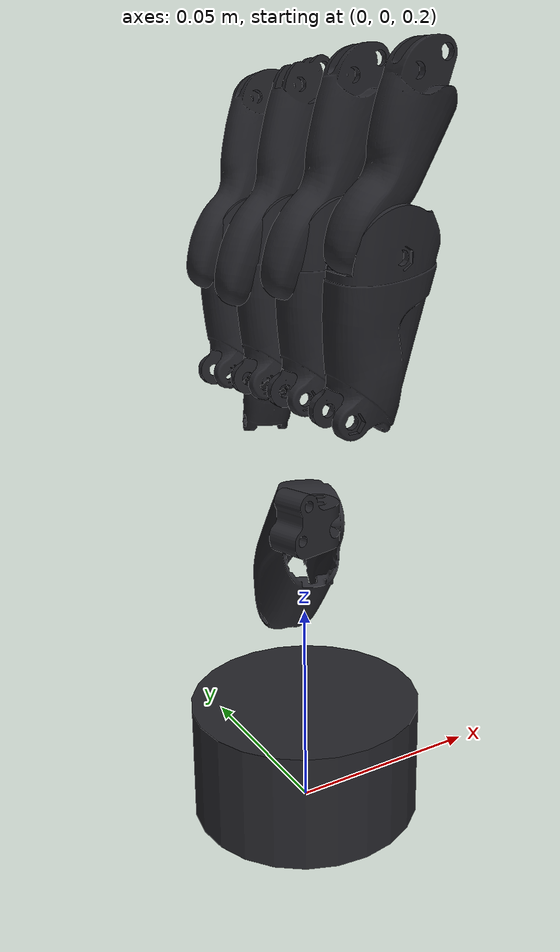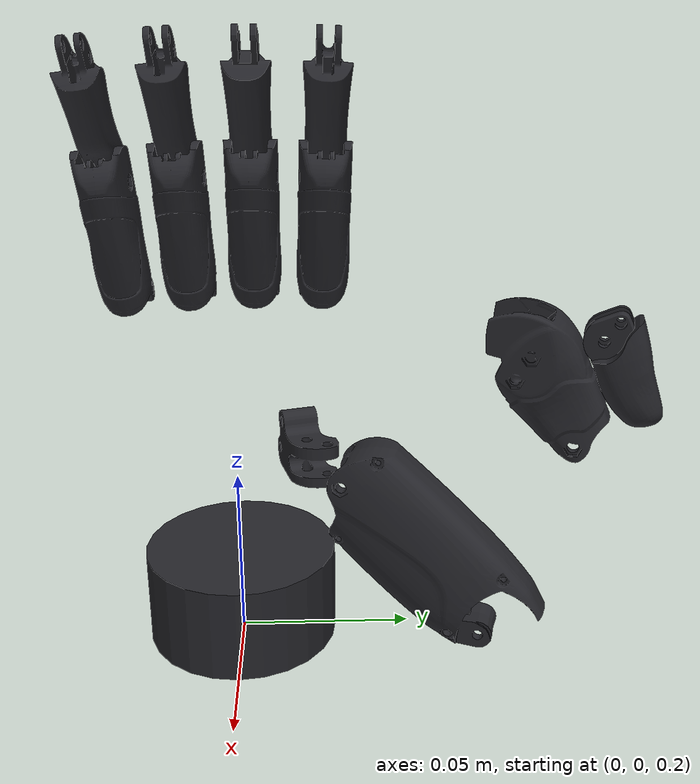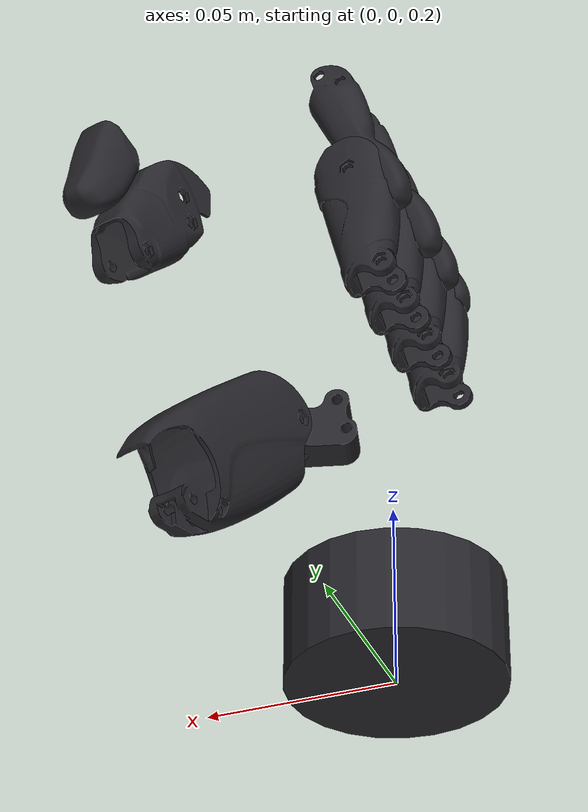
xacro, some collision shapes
<?xml version="1.0"?>
<robot xmlns:xacro="http://www.ros.org/wiki/xacro" name="inspire_hand">

  <xacro:arg name="side" default="right"/>
  <xacro:arg name="prefix" default=""/>

  <xacro:arg name="mount_to_world" default="true"/>

  <xacro:arg name="ros2_control" default="false"/>
  <xacro:arg name="hardware_type" default="mock"/>
  <xacro:arg name="mujoco_model" default=""/>
  <xacro:arg name="pids_config_file" default=""/>
  <xacro:arg name="headless" default="true"/>

  <xacro:include filename="$(find inspire_hand_description)/urdf/inspire_hand.macro.xacro"/>
  <xacro:include
    filename="$(find inspire_hand_description)/ros2_control/inspire_hand.ros2_control.xacro"/>

  <xacro:if value="$(arg mount_to_world)">
    <link name="world"/>
  </xacro:if>

  <xacro:inspire_hand
    side="$(arg side)"
    prefix="$(arg prefix)"
    parent="${'world' if '$(arg mount_to_world)' == 'true' else ''}"
    xyz="0 0 0.2"
    rpy="0 0 0"/>

  <xacro:if value="$(arg ros2_control)">
    <xacro:inspire_hand_ros2_control
      name="InspireHandSystem"
      prefix="$(arg prefix)"
      hardware_type="$(arg hardware_type)"
      mujoco_model="$(arg mujoco_model)"
      pids_config_file="$(arg pids_config_file)"
      headless="$(arg headless)"/>
  </xacro:if>

</robot>

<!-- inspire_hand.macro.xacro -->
<robot xmlns:xacro="http://www.ros.org/wiki/xacro">

  <xacro:include filename="$(find inspire_hand_description)/urdf/inspire_hand_right.macro.xacro"/>
  <xacro:include filename="$(find inspire_hand_description)/urdf/inspire_hand_left.macro.xacro"/>

  <xacro:macro name="inspire_hand"
    params="side:='right' prefix:='' parent:='' xyz:='0 0 0' rpy:='0 0 0'">

    <xacro:if value="${side == 'right'}">
      <xacro:inspire_hand_right prefix="${prefix}" parent="${parent}" xyz="${xyz}" rpy="${rpy}"/>
    </xacro:if>
    <xacro:if value="${side == 'left'}">
      <xacro:inspire_hand_left prefix="${prefix}" parent="${parent}" xyz="${xyz}" rpy="${rpy}"/>
    </xacro:if>
    <!-- Fails the expansion rather than silently producing a hand-less
         description. See inspire_franka_description's copy of this idiom for
         why it is a KeyError and not xacro.error(). -->
    <xacro:unless value="${side in ('left', 'right')}">
      <link name="${dict()['inspire_hand: side must be left or right.']}"/>
    </xacro:unless>

  </xacro:macro>
</robot>

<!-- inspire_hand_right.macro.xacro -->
<robot xmlns:xacro="http://www.ros.org/wiki/xacro">

  <xacro:macro name="inspire_hand_right"
    params="prefix:='' parent:='' xyz:='0 0 0' rpy:='0 0 0'">

    <!-- Mount. With no parent the hand stands alone and hand_mount is the
         description's root link; with one, it is welded to that link. -->
    <xacro:unless value="${parent == ''}">
      <joint name="${prefix}hand_mount_joint" type="fixed">
        <origin xyz="${xyz}" rpy="${rpy}"/>
        <parent link="${parent}"/>
        <child link="${prefix}hand_mount"/>
      </joint>
    </xacro:unless>

    <link name="${prefix}hand_mount" />

    <link name="${prefix}hand_base_link">
      <inertial>
        <origin xyz="-0.0025264 -0.066047 0.0019598" rpy="0 0 0" />
        <mass value="0.14143" />
        <inertia ixx="0.00012281" ixy="2.1711E-06" ixz="1.7709E-06" iyy="8.3832E-05" iyz="-1.6551E-06" izz="7.6663E-05" />
      </inertial>
      <visual>
        <origin xyz="0 0 0" rpy="0 0 0" />
        <geometry>
          <mesh filename="package://inspire_hand_description/meshes/right/visual/base_link.stl" />
        </geometry>
        <material name="${prefix}inspire_hand_shell">
          <color rgba="0.15 0.15 0.17 1.0" />
        </material>
      </visual>
      <collision>
        <origin xyz="0 -0.0136 0" rpy="1.57079 0 0" />
        <geometry>
          <cylinder length="0.0278" radius="0.028" />
        </geometry>
      </collision>
      <collision>
        <origin xyz="-0.0032 -0.038 0" rpy="0 0 0" />
        <geometry>
          <box size="0.0391 0.0202 0.0574" />
        </geometry>
      </collision>
      <collision>
        <origin xyz="-0.0032 -0.0682 0" rpy="0 0 0" />
        <geometry>
          <box size="0.0391 0.04 0.0814" />
        </geometry>
      </collision>
      <collision>
        <origin xyz="0 -0.1081 0" rpy="0 0 0" />
        <geometry>
          <box size="0.0322 0.04 0.0814" />
        </geometry>
      </collision>
      <collision>
        <origin xyz="-0.0016 -0.1340 0.0309" rpy="0 0 0" />
        <geometry>
          <box size="0.0125 0.0111 0.0089" />
        </geometry>
      </collision>
      <collision>
        <origin xyz="-0.0016 -0.1340 0.0118" rpy="0 0 0" />
        <geometry>
          <box size="0.0125 0.0111 0.0089" />
        </geometry>
      </collision>
      <collision>
        <origin xyz="-0.0016 -0.1340 -0.0070" rpy="0 0 0" />
        <geometry>
          <box size="0.0125 0.0111 0.0089" />
        </geometry>
      </collision>
      <collision>
        <origin xyz="-0.0016 -0.1340 -0.0262" rpy="0 0 0" />
        <geometry>
          <box size="0.0125 0.0111 0.0089" />
        </geometry>
      </collision>
    </link>

    <link name="${prefix}thumb_proximal_base">
      <inertial>
        <origin xyz="-0.0048064 0.0009382 -0.00757" rpy="0 0 0" />
        <mass value="0.0018869" />
        <inertia ixx="5.816E-08" ixy="1.4539E-08" ixz="4.491E-09" iyy="7.9161E-08" iyz="-1.8727E-09" izz="6.7433E-08" />
      </inertial>
      <visual>
        <origin xyz="0 0 0" rpy="0 0 0" />
        <geometry>
          <mesh filename="package://inspire_hand_description/meshes/right/visual/thumb_proximal_base.stl" />
        </geometry>
        <material name="${prefix}inspire_hand_shell">
          <color rgba="0.15 0.15 0.17 1.0" />
        </material>
      </visual>
      <collision>
        <origin xyz="0 0 0" rpy="0 0 0" />
        <geometry>
          <mesh filename="package://inspire_hand_description/meshes/right/collision/thumb_proximal_base.obj" />
        </geometry>
      </collision>
    </link>

    <link name="${prefix}thumb_proximal">
      <inertial>
        <origin xyz="0.021932 0.012785 -0.0080386" rpy="0 0 0" />
        <mass value="0.0066075" />
        <inertia ixx="1.5686E-06" ixy="-7.8296E-07" ixz="8.9143E-10" iyy="1.7353E-06" iyz="-1.0191E-09" izz="2.786E-06" />
      </inertial>
      <visual>
        <origin xyz="0 0 0" rpy="0 0 0" />
        <geometry>
          <mesh filename="package://inspire_hand_description/meshes/right/visual/thumb_proximal.stl" />
        </geometry>
        <material name="${prefix}inspire_hand_shell">
          <color rgba="0.15 0.15 0.17 1.0" />
        </material>
      </visual>
      <collision>
        <origin xyz="0 0 0" rpy="0 0 0" />
        <geometry>
          <mesh filename="package://inspire_hand_description/meshes/right/collision/thumb_proximal.obj" />
        </geometry>
      </collision>
    </link>

    <link name="${prefix}thumb_intermediate">
      <inertial>
        <origin xyz="0.0095544 -0.0016282 -0.0071997" rpy="0 0 0" />
        <mass value="0.0037847" />
        <inertia ixx="3.6981E-07" ixy="-9.8581E-08" ixz="-4.7469E-12" iyy="3.2394E-07" iyz="1.0939E-12" izz="4.6531E-07" />
      </inertial>
      <visual>
        <origin xyz="0 0 0" rpy="0 0 0" />
        <geometry>
          <mesh filename="package://inspire_hand_description/meshes/right/visual/thumb_intermediate.stl" />
        </geometry>
        <material name="${prefix}inspire_hand_shell">
          <color rgba="0.15 0.15 0.17 1.0" />
        </material>
      </visual>
      <collision>
        <origin xyz="0 0 0" rpy="0 0 0" />
        <geometry>
          <mesh filename="package://inspire_hand_description/meshes/right/collision/thumb_intermediate.obj" />
        </geometry>
      </collision>
    </link>

    <link name="${prefix}thumb_distal">
      <inertial>
        <origin xyz="0.0092888 0.0049529 -0.0060033" rpy="0 0 0" />
        <mass value="0.0033441" />
        <inertia ixx="1.3632E-07" ixy="-5.6788E-08" ixz="-9.2764E-11" iyy="1.4052E-07" iyz="-1.2283E-10" izz="2.0026E-07" />
      </inertial>
      <visual>
        <origin xyz="0 0 0" rpy="0 0 0" />
        <geometry>
          <mesh filename="package://inspire_hand_description/meshes/right/visual/thumb_distal.stl" />
        </geometry>
        <material name="${prefix}inspire_hand_shell">
          <color rgba="0.15 0.15 0.17 1.0" />
        </material>
      </visual>
      <collision>
        <origin xyz="0 0 0" rpy="0 0 0" />
        <geometry>
          <mesh filename="package://inspire_hand_description/meshes/right/collision/thumb_distal.obj" />
        </geometry>
      </collision>
    </link>

    <link name="${prefix}index_proximal">
      <inertial>
        <origin xyz="0.0012259 0.011942 -0.0060001" rpy="0 0 0" />
        <mass value="0.0042403" />
        <inertia ixx="6.6232E-07" ixy="-1.5775E-08" ixz="1.8515E-12" iyy="2.1146E-07" iyz="-5.0828E-12" izz="6.9398E-07" />
      </inertial>
      <visual>
        <origin xyz="0 0 0" rpy="0 0 0" />
        <geometry>
          <mesh filename="package://inspire_hand_description/meshes/right/visual/index_proximal.stl" />
        </geometry>
        <material name="${prefix}inspire_hand_shell">
          <color rgba="0.15 0.15 0.17 1.0" />
        </material>
      </visual>
      <collision>
        <origin xyz="0 0 0" rpy="0 0 0" />
        <geometry>
          <mesh filename="package://inspire_hand_description/meshes/right/collision/index_proximal.obj" />
        </geometry>
      </collision>
    </link>

    <link name="${prefix}index_intermediate">
      <inertial>
        <origin xyz="0.0019697 0.019589 -0.005" rpy="0 0 0" />
        <mass value="0.0045683" />
        <inertia ixx="7.6111E-07" ixy="8.7637E-08" ixz="-3.7751E-13" iyy="9.6076E-08" iyz="9.9444E-13" izz="7.8179E-07" />
      </inertial>
      <visual>
        <origin xyz="0 0 0" rpy="0 0 0" />
        <geometry>
          <mesh filename="package://inspire_hand_description/meshes/right/visual/index_intermediate.stl" />
        </geometry>
        <material name="${prefix}inspire_hand_shell">
          <color rgba="0.15 0.15 0.17 1.0" />
        </material>
      </visual>
      <collision>
        <origin xyz="0 0 0" rpy="0 0 0" />
        <geometry>
          <mesh filename="package://inspire_hand_description/meshes/right/collision/index_intermediate.obj" />
        </geometry>
      </collision>
    </link>

    <link name="${prefix}middle_proximal">
      <inertial>
        <origin xyz="0.001297 0.011934 -0.0060001" rpy="0 0 0" />
        <mass value="0.0042403" />
        <inertia ixx="6.6211E-07" ixy="-1.8461E-08" ixz="1.8002E-12" iyy="2.1167E-07" iyz="-6.6808E-12" izz="6.9397E-07" />
      </inertial>
      <visual>
        <origin xyz="0 0 0" rpy="0 0 0" />
        <geometry>
          <mesh filename="package://inspire_hand_description/meshes/right/visual/index_proximal.stl" />
        </geometry>
        <material name="${prefix}inspire_hand_shell">
          <color rgba="0.15 0.15 0.17 1.0" />
        </material>
      </visual>
      <collision>
        <origin xyz="0 0 0" rpy="0 0 0" />
        <geometry>
          <mesh filename="package://inspire_hand_description/meshes/right/collision/index_proximal.obj" />
        </geometry>
      </collision>
    </link>

    <link name="${prefix}middle_intermediate">
      <inertial>
        <origin xyz="0.001921 0.020796 -0.005" rpy="0 0 0" />
        <mass value="0.0050396" />
        <inertia ixx="9.5822E-07" ixy="1.1425E-07" ixz="-2.4791E-12" iyy="1.0646E-07" iyz="5.9173E-12" izz="9.8384E-07" />
      </inertial>
      <visual>
        <origin xyz="0 0 0" rpy="0 0 0" />
        <geometry>
          <mesh filename="package://inspire_hand_description/meshes/right/visual/middle_intermediate.stl" />
        </geometry>
        <material name="${prefix}inspire_hand_shell">
          <color rgba="0.15 0.15 0.17 1.0" />
        </material>
      </visual>
      <collision>
        <origin xyz="0 0 0" rpy="0 0 0" />
        <geometry>
          <mesh filename="package://inspire_hand_description/meshes/right/collision/middle_intermediate.obj" />
        </geometry>
      </collision>
    </link>

    <link name="${prefix}ring_proximal">
      <inertial>
        <origin xyz="0.001297 0.011934 -0.0060002" rpy="0 0 0" />
        <mass value="0.0042403" />
        <inertia ixx="6.6211E-07" ixy="-1.8461E-08" ixz="1.5793E-12" iyy="2.1167E-07" iyz="-6.6868E-12" izz="6.9397E-07" />
      </inertial>
      <visual>
        <origin xyz="0 0 0" rpy="0 0 0" />
        <geometry>
          <mesh filename="package://inspire_hand_description/meshes/right/visual/index_proximal.stl" />
        </geometry>
        <material name="${prefix}inspire_hand_shell">
          <color rgba="0.15 0.15 0.17 1.0" />
        </material>
      </visual>
      <collision>
        <origin xyz="0 0 0" rpy="0 0 0" />
        <geometry>
          <mesh filename="package://inspire_hand_description/meshes/right/collision/index_proximal.obj" />
        </geometry>
      </collision>
    </link>

    <link name="${prefix}ring_intermediate">
      <inertial>
        <origin xyz="0.0021753 0.019567 -0.005" rpy="0 0 0" />
        <mass value="0.0045683" />
        <inertia ixx="7.6286E-07" ixy="8.0635E-08" ixz="-6.1562E-13" iyy="9.431E-08" iyz="5.8619E-13" izz="7.8177E-07" />
      </inertial>
      <visual>
        <origin xyz="0 0 0" rpy="0 0 0" />
        <geometry>
          <mesh filename="package://inspire_hand_description/meshes/right/visual/index_intermediate.stl" />
        </geometry>
        <material name="${prefix}inspire_hand_shell">
          <color rgba="0.15 0.15 0.17 1.0" />
        </material>
      </visual>
      <collision>
        <origin xyz="0 0 0" rpy="0 0 0" />
        <geometry>
          <mesh filename="package://inspire_hand_description/meshes/right/collision/index_intermediate.obj" />
        </geometry>
      </collision>
    </link>

    <link name="${prefix}pinky_proximal">
      <inertial>
        <origin xyz="0.001297 0.011934 -0.0060001" rpy="0 0 0" />
        <mass value="0.0042403" />
        <inertia ixx="6.6211E-07" ixy="-1.8461E-08" ixz="1.6907E-12" iyy="2.1167E-07" iyz="-6.9334E-12" izz="6.9397E-07" />
      </inertial>
      <visual>
        <origin xyz="0 0 0" rpy="0 0 0" />
        <geometry>
          <mesh filename="package://inspire_hand_description/meshes/right/visual/index_proximal.stl" />
        </geometry>
        <material name="${prefix}inspire_hand_shell">
          <color rgba="0.15 0.15 0.17 1.0" />
        </material>
      </visual>
      <collision>
        <origin xyz="0 0 0" rpy="0 0 0" />
        <geometry>
          <mesh filename="package://inspire_hand_description/meshes/right/collision/index_proximal.obj" />
        </geometry>
      </collision>
    </link>

    <link name="${prefix}pinky_intermediate">
      <inertial>
        <origin xyz="0.0024748 0.016203 -0.0050031" rpy="0 0 0" />
        <mass value="0.0035996" />
        <inertia ixx="4.3913E-07" ixy="4.1418E-08" ixz="3.7168E-11" iyy="7.0247E-08" iyz="5.8613E-11" izz="4.4867E-07" />
      </inertial>
      <visual>
        <origin xyz="0 0 0" rpy="0 0 0" />
        <geometry>
          <mesh filename="package://inspire_hand_description/meshes/right/visual/pinky_intermediate.stl" />
        </geometry>
        <material name="${prefix}inspire_hand_shell">
          <color rgba="0.15 0.15 0.17 1.0" />
        </material>
      </visual>
      <collision>
        <origin xyz="0 0 0" rpy="0 0 0" />
        <geometry>
          <mesh filename="package://inspire_hand_description/meshes/right/collision/pinky_intermediate.obj" />
        </geometry>
      </collision>
    </link>

    <link name="${prefix}thumb_tip" />

    <link name="${prefix}index_tip" />

    <link name="${prefix}middle_tip" />

    <link name="${prefix}ring_tip" />

    <link name="${prefix}pinky_tip" />

    <joint name="${prefix}base_joint" type="fixed">
      <parent link="${prefix}hand_mount" />
      <child link="${prefix}hand_base_link" />
      <origin xyz="0 0 0" rpy="-1.57079 0 3.14159" />
    </joint>

    <joint name="${prefix}thumb_proximal_yaw_joint" type="revolute">
      <origin xyz="-0.01696 -0.0691 -0.02045" rpy="1.5708 -1.5708 0" />
      <parent link="${prefix}hand_base_link" />
      <child link="${prefix}thumb_proximal_base" />
      <axis xyz="0 0 -1" />
      <limit lower="0.0" upper="1.308" effort="1" velocity="0.5" />
    </joint>

    <joint name="${prefix}thumb_proximal_pitch_joint" type="revolute">
      <origin xyz="-0.0088099 0.010892 -0.00925" rpy="1.5708 0 2.8587" />
      <parent link="${prefix}thumb_proximal_base" />
      <child link="${prefix}thumb_proximal" />
      <axis xyz="0 0 1" />
      <limit lower="0" upper="0.6" effort="1" velocity="0.5" />
    </joint>

    <joint name="${prefix}thumb_intermediate_joint" type="revolute">
      <origin xyz="0.04407 0.034553 -0.0008" rpy="0 0 0" />
      <parent link="${prefix}thumb_proximal" />
      <child link="${prefix}thumb_intermediate" />
      <axis xyz="0 0 1" />
      <limit lower="0" upper="0.8" effort="1" velocity="0.5" />
      <mimic joint="${prefix}thumb_proximal_pitch_joint" multiplier="1.334" offset="0" />
    </joint>

    <joint name="${prefix}thumb_distal_joint" type="revolute">
      <origin xyz="0.020248 0.010156 -0.0012" rpy="0 0 0" />
      <parent link="${prefix}thumb_intermediate" />
      <child link="${prefix}thumb_distal" />
      <axis xyz="0 0 1" />
      <limit lower="0" upper="0.4" effort="1" velocity="0.5" />
      <mimic joint="${prefix}thumb_proximal_pitch_joint" multiplier="0.667" offset="0" />
    </joint>

    <joint name="${prefix}index_proximal_joint" type="revolute">
      <origin xyz="0.00028533 -0.13653 -0.032268" rpy="-3.1067 0 0" />
      <parent link="${prefix}hand_base_link" />
      <child link="${prefix}index_proximal" />
      <axis xyz="0 0 1" />
      <limit lower="0" upper="1.47" effort="1" velocity="0.5" />
    </joint>

    <joint name="${prefix}index_intermediate_joint" type="revolute">
      <origin xyz="-0.0026138 0.032026 -0.001" rpy="0 0 0" />
      <parent link="${prefix}index_proximal" />
      <child link="${prefix}index_intermediate" />
      <axis xyz="0 0 1" />
      <limit lower="-0.04545" upper="1.56" effort="1" velocity="0.5" />
      <mimic joint="${prefix}index_proximal_joint" multiplier="1.06399" offset="-0.04545" />
    </joint>

    <joint name="${prefix}middle_proximal_joint" type="revolute">
      <origin xyz="0.00028533 -0.1371 -0.01295" rpy="-3.1416 0 0" />
      <parent link="${prefix}hand_base_link" />
      <child link="${prefix}middle_proximal" />
      <axis xyz="0 0 1" />
      <limit lower="0" upper="1.47" effort="1" velocity="0.5" />
    </joint>

    <joint name="${prefix}middle_intermediate_joint" type="revolute">
      <origin xyz="-0.0024229 0.032041 -0.001" rpy="0 0 0" />
      <parent link="${prefix}middle_proximal" />
      <child link="${prefix}middle_intermediate" />
      <axis xyz="0 0 1" />
      <limit lower="-0.04545" upper="1.56" effort="1" velocity="0.5" />
      <mimic joint="${prefix}middle_proximal_joint" multiplier="1.06399" offset="-0.04545" />
    </joint>

    <joint name="${prefix}ring_proximal_joint" type="revolute">
      <origin xyz="0.00028533 -0.13691 0.0062872" rpy="3.0892 0 0" />
      <parent link="${prefix}hand_base_link" />
      <child link="${prefix}ring_proximal" />
      <axis xyz="0 0 1" />
      <limit lower="0" upper="1.47" effort="1" velocity="0.5" />
    </joint>

    <joint name="${prefix}ring_intermediate_joint" type="revolute">
      <origin xyz="-0.0024229 0.032041 -0.001" rpy="0 0 0" />
      <parent link="${prefix}ring_proximal" />
      <child link="${prefix}ring_intermediate" />
      <axis xyz="0 0 1" />
      <limit lower="-0.04545" upper="1.56" effort="1" velocity="0.5" />
      <mimic joint="${prefix}ring_proximal_joint" multiplier="1.06399" offset="-0.04545" />
    </joint>

    <joint name="${prefix}pinky_proximal_joint" type="revolute">
      <origin xyz="0.00028533 -0.13571 0.025488" rpy="3.0369 0 0" />
      <parent link="${prefix}hand_base_link" />
      <child link="${prefix}pinky_proximal" />
      <axis xyz="0 0 1" />
      <limit lower="0" upper="1.47" effort="1" velocity="0.5" />
    </joint>

    <joint name="${prefix}pinky_intermediate_joint" type="revolute">
      <origin xyz="-0.0024229 0.032041 -0.001" rpy="0 0 0" />
      <parent link="${prefix}pinky_proximal" />
      <child link="${prefix}pinky_intermediate" />
      <axis xyz="0 0 1" />
      <limit lower="-0.04545" upper="1.56" effort="1" velocity="0.5" />
      <mimic joint="${prefix}pinky_proximal_joint" multiplier="1.06399" offset="-0.04545" />
    </joint>

    <joint name="${prefix}thumb_tip_joint" type="fixed">
      <origin xyz="0.0202 0.0140 -0.006" rpy="0 0 0" />
      <parent link="${prefix}thumb_distal" />
      <child link="${prefix}thumb_tip" />
    </joint>

    <joint name="${prefix}index_tip_joint" type="fixed">
      <origin xyz="-0.0008 0.045 -0.005" rpy="0 0 0" />
      <parent link="${prefix}index_intermediate" />
      <child link="${prefix}index_tip" />
    </joint>

    <joint name="${prefix}middle_tip_joint" type="fixed">
      <origin xyz="-0.001 0.048 -0.005" rpy="0 0 0" />
      <parent link="${prefix}middle_intermediate" />
      <child link="${prefix}middle_tip" />
    </joint>

    <joint name="${prefix}ring_tip_joint" type="fixed">
      <origin xyz="-0.0008 0.045 -0.005" rpy="0 0 0" />
      <parent link="${prefix}ring_intermediate" />
      <child link="${prefix}ring_tip" />
    </joint>

    <joint name="${prefix}pinky_tip_joint" type="fixed">
      <origin xyz="-0.0008 0.037 -0.005" rpy="0 0 0" />
      <parent link="${prefix}pinky_intermediate" />
      <child link="${prefix}pinky_tip" />
    </joint>

  </xacro:macro>
</robot>
